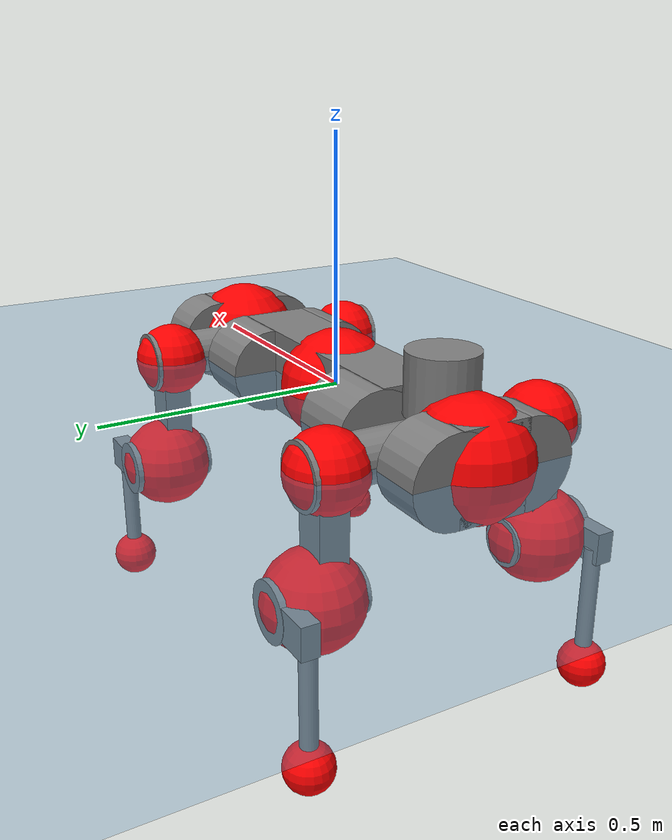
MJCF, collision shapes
<mujoco model="anymal_c">
  <compiler angle="radian" assetdir="assets" balanceinertia="true" inertiafromgeom="false"/>

  <option timestep="0.005" density="1.2" viscosity="2e-05"/>

  <size nkey="1"/>

  <visual>
    <quality shadowsize="8192"/>
    <map shadowclip="0.5"/>
  </visual>

  <default>
    <default class="/">
      <material specular="0" shininess="0.25"/>
      <geom contype="0" conaffinity="0" group="1" solref="-1000 -80"/>
      <site size="0.01 0.005 0.005" group="5"/>
      <general forcelimited="true" forcerange="-80 80" biastype="affine" gainprm="80" biasprm="0 -80 -2"/>
      <default class="anymal_c">
        <joint armature="0.01" damping="0.01" frictionloss="0.1"/>
        <default class="visual">
          <geom type="mesh" group="2"/>
          <default class="visual_zflip"/>
        </default>
        <default class="collision">
          <geom type="cylinder" group="3"/>
          <default class="foot">
            <geom size="0.03 0 0" type="sphere" condim="6" priority="1" friction="0.8 0.02 0.01" solimp="0.015 1 0.03"/>
          </default>
        </default>
      </default>
      <default class="reward_collision_sphere">
        <geom group="5" rgba="1 0 0 1"/>
      </default>
    </default>
  </default>

  <asset>
    <texture type="skybox" colorspace="auto" name="//unnamed_texture_0" builtin="gradient" rgb1="0.95 0.95 0.95" rgb2="0.95 0.95 0.95" width="100" height="600"/>
    <texture type="2d" colorspace="auto" name="texplane" builtin="checker" rgb1="0.345 0.575 0.748" rgb2="0.345 0.575 0.748" markrgb="1 1 1" width="512" height="512"/>
    <texture type="2d" colorspace="linear" name="base" file="base.png"/>
    <texture type="2d" colorspace="linear" name="top_shell" file="top_shell.png"/>
    <texture type="2d" colorspace="linear" name="bottom_shell" file="bottom_shell.png"/>
    <texture type="2d" colorspace="linear" name="remote" file="remote.png"/>
    <texture type="2d" colorspace="linear" name="hatch" file="hatch.png"/>
    <texture type="2d" colorspace="linear" name="handle" file="handle.png"/>
    <texture type="2d" colorspace="linear" name="face" file="face.png"/>
    <texture type="2d" colorspace="linear" name="battery" file="battery.png"/>
    <texture type="2d" colorspace="linear" name="lidar_cage" file="lidar_cage.png"/>
    <texture type="2d" colorspace="linear" name="depth_camera" file="depth_camera.png"/>
    <texture type="2d" colorspace="linear" name="wide_angle_camera" file="wide_angle_camera.png"/>
    <texture type="2d" colorspace="linear" name="lidar" file="lidar.png"/>
    <texture type="2d" colorspace="linear" name="drive" file="drive.png"/>
    <texture type="2d" colorspace="linear" name="hip_l" file="hip_l.png"/>
    <texture type="2d" colorspace="linear" name="shank_l" file="shank_l.png"/>
    <texture type="2d" colorspace="linear" name="foot" file="foot.png"/>
    <texture type="2d" colorspace="linear" name="thigh" file="thigh.png"/>
    <texture type="2d" colorspace="linear" name="shank_r" file="shank_r.png"/>
    <texture type="2d" colorspace="linear" name="hip_r" file="hip_r.png"/>
    <material name="MatPlane" class="/" texture="texplane" texuniform="true" texrepeat="2 2" specular="0.9" shininess="0.5"/>
    <material name="black_plastic" class="/" rgba="0.007 0.007 0.007 1"/>
    <material name="green" class="/" rgba="0.052 0.178 0.033 1"/>
    <material name="red" class="/" rgba="0.178 0.006 0.005 1"/>
    <material name="yellow" class="/" rgba="0.178 0.119 0.006 1"/>
    <material name="lwl" class="/" rgba="0.8 0.8 0.8 1"/>
    <material name="base" class="/" texture="base"/>
    <material name="top_shell" class="/" texture="top_shell"/>
    <material name="bottom_shell" class="/" texture="bottom_shell"/>
    <material name="hip_l" class="/" texture="hip_l"/>
    <material name="thigh" class="/" texture="thigh"/>
    <material name="shank_l" class="/" texture="shank_l"/>
    <material name="foot" class="/" texture="foot"/>
    <material name="hip_r" class="/" texture="hip_r"/>
    <material name="shank" class="/" texture="shank_r"/>
    <material name="hatch" class="/" texture="hatch"/>
    <material name="remote" class="/" texture="remote"/>
    <material name="handle" class="/" texture="handle"/>
    <material name="face" class="/" texture="face"/>
    <material name="depth_camera" class="/" texture="depth_camera"/>
    <material name="wide_angle_camera" class="/" texture="wide_angle_camera"/>
    <material name="battery" class="/" texture="battery"/>
    <material name="lidar_cage" class="/" texture="lidar_cage"/>
    <material name="lidar" class="/" texture="lidar"/>
    <material name="drive" class="/" texture="drive"/>
    <mesh name="base_0" class="/" file="base_0.obj"/>
    <mesh name="base_1" class="/" file="base_1.obj"/>
    <mesh name="base_2" class="/" file="base_2.obj"/>
    <mesh name="base_3" class="/" file="base_3.obj"/>
    <mesh name="base_4" class="/" file="base_4.obj"/>
    <mesh name="base_5" class="/" file="base_5.obj"/>
    <mesh name="top_shell" class="/" file="top_shell.obj"/>
    <mesh name="bottom_shell" class="/" file="bottom_shell.obj"/>
    <mesh name="remote" class="/" file="remote.obj"/>
    <mesh name="handle" class="/" file="handle.obj"/>
    <mesh name="face" class="/" file="face.obj"/>
    <mesh name="wide_angle_camera" class="/" file="wide_angle_camera.obj"/>
    <mesh name="depth_camera" class="/" file="depth_camera.obj"/>
    <mesh name="battery" class="/" file="battery.obj"/>
    <mesh name="lidar_cage" class="/" file="lidar_cage.obj"/>
    <mesh name="lidar" class="/" file="lidar.obj"/>
    <mesh name="drive" class="/" file="drive.obj"/>
    <mesh name="hip_l" class="/" file="hip_l.obj"/>
    <mesh name="thigh" class="/" file="thigh.obj"/>
    <mesh name="shank_l" class="/" file="shank_l.obj"/>
    <mesh name="foot" class="/" file="foot.obj"/>
    <mesh name="hip_r" class="/" file="hip_r.obj"/>
    <mesh name="hatch" class="/" file="hatch.obj"/>
    <mesh name="shank_r" class="/" file="shank_r.obj"/>
  </asset>

  <worldbody>
    <geom name="floor" class="/" size="100 100 0.125" type="plane" group="0" material="MatPlane"/>
    <light name="toplight_shadow" class="/" pos="0 0 5" dir="0.0990148 0.0990148 -0.990148" type="directional" ambient="0.04 0.04 0.04" diffuse="0.55 0.55 0.55" specular="0.12 0.12 0.12"/>
    <light name="toplight_fill" class="/" pos="0 0 5" dir="0.0990148 0.0990148 -0.990148" type="directional" castshadow="false" ambient="0.04 0.04 0.04" diffuse="0.3 0.3 0.3" specular="0.08 0.08 0.08"/>
    <body name="trunk" childclass="anymal_c" pos="-0.00165419 -0.00283819 -0.00165935" quat="0.999999 0.00121094 0.000106485 -0.000504418">
      <inertial pos="0.00121188 0.00116681 0.0423399" quat="0.503791 0.498918 0.50339 0.493836" mass="17.8844" diaginertia="0.616578 0.923144 0.0955089"/>
      <joint name="//unnamed_joint_0" type="free" armature="0" damping="0" frictionloss="0"/>
      <geom name="//unnamed_geom_1" class="visual" material="green" mesh="base_0"/>
      <geom name="//unnamed_geom_2" class="visual" material="yellow" mesh="base_1"/>
      <geom name="//unnamed_geom_3" class="visual" material="red" mesh="base_2"/>
      <geom name="//unnamed_geom_4" class="visual" material="black_plastic" mesh="base_3"/>
      <geom name="//unnamed_geom_5" class="visual" material="lwl" mesh="base_4"/>
      <geom name="//unnamed_geom_6" class="visual" material="base" mesh="base_5"/>
      <geom name="trunk_1" class="collision" size="0.28211 0.0680955 0.0875514" type="box"/>
      <geom name="trunk_2" class="collision" size="0.0875514 0.0705275" pos="0.21597 0.0758056 0" quat="0.707107 0 0.707107 0"/>
      <geom name="trunk_3" class="collision" size="0.0875514 0.0705275" pos="-0.21597 0.0758056 0" quat="0.707107 0 0.707107 0"/>
      <geom name="trunk_4" class="collision" size="0.0875514 0.0705275" pos="0.21597 -0.0758056 0" quat="0.707107 0 0.707107 0"/>
      <geom name="trunk_5" class="collision" size="0.0875514 0.0705275" pos="-0.21597 -0.0758056 0" quat="0.707107 0 0.707107 0"/>
      <geom name="//unnamed_geom_12" class="visual" material="top_shell" mesh="top_shell"/>
      <geom name="//unnamed_geom_13" class="visual" material="bottom_shell" mesh="bottom_shell"/>
      <geom name="//unnamed_geom_14" class="visual" material="remote" mesh="remote"/>
      <geom name="//unnamed_geom_15" class="visual" material="handle" mesh="handle"/>
      <geom name="//unnamed_geom_16" class="visual" pos="0.411584 0 0" quat="1 0 0 0" material="face" mesh="face"/>
      <geom name="trunk_6" class="collision" size="0.0535036 0.0680955 0.0875514" pos="0.466197 0 0" type="box"/>
      <geom name="//unnamed_geom_18" class="collision" size="0.0875514 0.0535036" pos="0.466197 0.0758056 0" quat="0.707107 0 0.707107 0"/>
      <geom name="//unnamed_geom_19" class="collision" size="0.0875514 0.0535036" pos="0.466197 -0.0758056 0" quat="0.707107 0 0.707107 0"/>
      <geom name="//unnamed_geom_20" class="visual" pos="0.458396 0 -0.0234567" quat="0.965926 0 0.258819 0" material="depth_camera" mesh="depth_camera"/>
      <geom name="//unnamed_geom_21" class="visual" pos="0.509391 0 0.0126119" material="wide_angle_camera" mesh="wide_angle_camera"/>
      <geom name="//unnamed_geom_22" class="visual_zflip" pos="-0.411584 0 0" quat="0 0 0 1" material="face" mesh="face"/>
      <geom name="trunk_7" class="collision" size="0.0535036 0.0680955 0.0875514" pos="-0.466197 0 0" quat="0 0 0 1" type="box"/>
      <geom name="//unnamed_geom_24" class="collision" size="0.0875514 0.0535036" pos="-0.466197 -0.0758056 0" quat="0 -0.707107 0 0.707107"/>
      <geom name="//unnamed_geom_25" class="collision" size="0.0875514 0.0535036" pos="-0.466197 0.0758056 0" quat="0 -0.707107 0 0.707107"/>
      <geom name="//unnamed_geom_26" class="visual" pos="-0.458396 0 -0.0234567" quat="0 -0.258819 0 0.965926" material="depth_camera" mesh="depth_camera"/>
      <geom name="//unnamed_geom_27" class="visual_zflip" pos="-0.509391 0 0.0126119" quat="0 0 0 1" material="wide_angle_camera" mesh="wide_angle_camera"/>
      <geom name="//unnamed_geom_28" class="visual" material="battery" mesh="battery"/>
      <geom name="//unnamed_geom_29" class="visual" pos="0 0.0839758 0.0256177" quat="0.683013 -0.183013 0.183013 0.683013" material="depth_camera" mesh="depth_camera"/>
      <geom name="//unnamed_geom_30" class="visual" pos="0 -0.0839758 0.0256177" quat="0.683013 0.183013 0.183013 -0.683013" material="depth_camera" mesh="depth_camera"/>
      <geom name="//unnamed_geom_31" class="visual" pos="-0.361439 0 0.0619222" quat="1 0 0 0" material="lidar_cage" mesh="lidar_cage"/>
      <geom name="trunk_8" class="collision" size="0.0680955 0.0583676" pos="-0.361439 0 0.112471"/>
      <geom name="//unnamed_geom_33" class="visual" pos="-0.361439 3.53482e-05 0.1198" quat="0.707107 0 0 -0.707107" material="lidar" mesh="lidar"/>
      <geom name="//unnamed_geom_34" class="visual" pos="0.29779 0.11254 4.14795e-09" quat="0.258819 0.965926 0 0" material="drive" mesh="drive"/>
      <geom name="//unnamed_geom_35" class="visual" pos="0.29779 -0.11254 -4.14795e-09" quat="0.258819 -0.965926 0 0" material="drive" mesh="drive"/>
      <geom name="//unnamed_geom_36" class="visual" pos="-0.29779 0.11254 -4.14795e-09" quat="0 0 0.965926 -0.258819" material="drive" mesh="drive"/>
      <geom name="//unnamed_geom_37" class="visual" pos="-0.29779 -0.11254 4.14795e-09" quat="0 0 -0.965926 -0.258819" material="drive" mesh="drive"/>
      <geom name="//unnamed_geom_38" class="visual" pos="0.115184 0 0.0615009" quat="1 0 0 0" material="hatch" mesh="hatch"/>
      <geom name="//unnamed_geom_39" class="reward_collision_sphere" size="0.116735"/>
      <geom name="//unnamed_geom_40" class="reward_collision_sphere" size="0.116735" pos="0.446834 0 0"/>
      <geom name="//unnamed_geom_41" class="reward_collision_sphere" size="0.116735" pos="-0.446834 0 0"/>
      <site name="imu" pos="0.24615 0.0161408 0.0364892" size="0.00972793"/>
      <camera name="track" pos="0 -2.16588 0" quat="0.707107 0.707107 0 0" mode="trackcom"/>
      <camera name="ego_camera" pos="0.446834 0 -0.0336991" quat="-0.5 -0.5 0.5 0.5"/>
      <body name="LF_HIP" pos="0.295932 0.110441 0.00232696" quat="0.259142 0.965839 -1.16371e-06 -0.000596729">
        <inertial pos="0.0550978 -0.0186793 -0.00932281" quat="-0.13104 0.71076 -0.135918 0.677624" mass="2.66634" diaginertia="0.00587377 0.00735723 0.00148384"/>
        <joint name="LF_HAA" pos="0 0 0" axis="1 -0.000539159 0.000218065" range="-0.701862 0.442359" armature="0.0110759" damping="0" frictionloss="0.106435"/>
        <geom name="//unnamed_geom_42" class="visual" pos="0 0.000244005 -4.00776e-05" quat="0.258819 -0.965926 0 0" material="hip_l" mesh="hip_l"/>
        <geom name="//unnamed_geom_43" class="visual" pos="0.0594785 -0.0731701 -0.0404662" quat="0.183013 -0.683013 0.683013 0.183013" material="drive" mesh="drive"/>
        <geom name="//unnamed_geom_44" class="collision" size="0.0486397 0.0680955" pos="0.0594786 -0.0129517 -0.00581731" quat="-0.353553 -0.612372 0.612372 -0.353553"/>
        <body name="LF_THIGH" pos="0.0592969 -0.0798644 -0.0341555" quat="0.182828 -0.682738 0.683318 0.183084">
          <inertial pos="0.0323476 -0.000394615 -0.204726" quat="0.993669 -0.00376887 -0.0771683 0.0815587" mass="2.83508" diaginertia="0.0297674 0.045051 0.00175152"/>
          <joint name="LF_HFE" pos="0 0 0" axis="0.999936 -0.00537211 0.00991053" stiffness="0.0028077" range="-3.19481 3.19373" armature="0.0111228" damping="0" frictionloss="0.108796"/>
          <geom name="//unnamed_geom_45" class="visual" pos="-0.00179012 -2.82081e-06 0" quat="0.707107 0 0 -0.707107" material="thigh" mesh="thigh"/>
          <geom name="//unnamed_geom_46" class="collision" size="0.0632316 0.0389117" pos="0.0397186 0 0" quat="0.5 0.5 -0.5 -0.5"/>
          <geom name="//unnamed_geom_47" class="collision" size="0.0364798 0.0291838 0.137469" pos="0.0297889 0 -0.119054" quat="0.707107 0 0 -0.707107" type="box"/>
          <geom name="//unnamed_geom_48" class="visual" pos="0.0995943 0 -0.240106" quat="1 0 0 0" material="drive" mesh="drive"/>
          <geom name="//unnamed_geom_49" class="collision" size="0.0486397 0.0680955" pos="0.0300868 0 -0.240106" quat="0.707107 0 0.707107 0"/>
          <geom name="//unnamed_geom_50" class="reward_collision_sphere" size="0.0778235" pos="0.0248241 0 0"/>
          <body name="LF_SHANK" pos="0.100672 -0.000925257 -0.240689" quat="0.999999 0.000136834 0.00135049 8.33448e-05">
            <inertial pos="0.00811485 -0.0638071 -0.0707847" quat="0.991818 -0.123411 0.00402446 -0.032403" mass="0.546376" diaginertia="0.00969178 0.0141909 0.00045873"/>
            <joint name="LF_KFE" pos="0 0 0" axis="0.999997 -0.00154636 0.00190014" range="-3.11975 3.08952" armature="0.00836231" damping="0.0104483" frictionloss="0.101718"/>
            <geom name="//unnamed_geom_51" class="visual" pos="-0.00058372 -0.00311242 0" quat="0.707107 0 0 -0.707107" material="shank_l" mesh="shank_l"/>
            <geom name="LF_kfe_act" class="collision" size="0.0583676 0.0194559" pos="0.0198593 0 0" quat="0.5 0.5 -0.5 -0.5"/>
            <geom name="//unnamed_geom_53" class="collision" size="0.0559347 0.0328318 0.0184831" pos="0.0198593 -0.0622678 0" quat="0.5 0.5 -0.5 -0.5" type="box"/>
            <geom name="//unnamed_geom_54" class="visual" pos="0.0129583 -0.0962474 -0.284732" quat="0.382683 0 0 -0.92388" material="foot" mesh="foot"/>
            <geom name="LF_calf" class="collision" size="0.0170239 0.137409" pos="0.0129582 -0.0952444 -0.142366" quat="0.707107 0 0 -0.707107"/>
            <geom name="LF_foot" class="foot" size="0.0338144" pos="0.0129582 -0.0952444 -0.265777" quat="0.707107 0 0 -0.707107"/>
            <geom name="//unnamed_geom_57" class="reward_collision_sphere" size="0.0972793" pos="-0.0496482 0 0"/>
            <geom name="//unnamed_geom_58" class="reward_collision_sphere" size="0.0486397" pos="0.0129582 -0.0952444 -0.265777"/>
            <site name="LF_foot" class="foot" pos="0.0129582 -0.0952444 -0.265777" quat="0.707107 0 0 -0.707107" size="0.00972793"/>
          </body>
        </body>
      </body>
      <body name="RF_HIP" pos="0.297856 -0.110778 0.000219801" quat="0.259625 -0.965709 -0.000259593 -0.000187438">
        <inertial pos="0.0590395 0.0178223 -0.00698614" quat="0.13734 0.677247 0.128101 0.711382" mass="2.66737" diaginertia="0.00591488 0.00760263 0.00139546"/>
        <joint name="RF_HAA" pos="0 0 0" axis="0.999995 -0.000501768 -0.00295857" range="-0.440419 0.724156" armature="0.00909804" damping="0.0107908" frictionloss="0.104846"/>
        <geom name="//unnamed_geom_59" class="visual" pos="0 -0.000244003 -4.00775e-05" quat="0.258819 0.965926 0 0" material="hip_r" mesh="hip_r"/>
        <geom name="//unnamed_geom_60" class="visual" pos="0.0594786 0.0731701 -0.0404662" quat="0.183013 0.683013 0.683013 -0.183013" material="drive" mesh="drive"/>
        <geom name="//unnamed_geom_61" class="collision" size="0.0486397 0.0680955" pos="0.0594786 0.0129517 -0.00581731" quat="-0.353553 0.612372 0.612372 0.353553"/>
        <body name="RF_THIGH" pos="0.0585571 0.0780902 -0.0333049" quat="0.183048 0.683551 0.68264 -0.182358">
          <inertial pos="0.0278514 -0.00139719 -0.207244" quat="0.992406 -0.00253247 -0.0811446 0.0924126" mass="2.73869" diaginertia="0.0288697 0.0426386 0.00168651"/>
          <joint name="RF_HFE" pos="0 0 0" axis="0.999986 -0.00454162 0.00288759" stiffness="0.00565225" range="-3.15983 3.11096" armature="0.00961652" damping="0.0130422" frictionloss="0.106672"/>
          <geom name="//unnamed_geom_62" class="visual" pos="-0.00179012 -2.82081e-06 0" quat="0.707107 0 0 -0.707107" material="thigh" mesh="thigh"/>
          <geom name="//unnamed_geom_63" class="collision" size="0.0632316 0.0389117" pos="0.0397186 0 0" quat="0.5 0.5 0.5 0.5"/>
          <geom name="//unnamed_geom_64" class="collision" size="0.0364798 0.0291838 0.137469" pos="0.0297889 0 -0.119054" quat="0.707107 0 0 0.707107" type="box"/>
          <geom name="//unnamed_geom_65" class="visual" pos="0.0995943 0 -0.240106" quat="1 0 0 0" material="drive" mesh="drive"/>
          <geom name="//unnamed_geom_66" class="collision" size="0.0486397 0.0680955" pos="0.0300868 0 -0.240106" quat="0.707107 0 0.707107 0"/>
          <geom name="//unnamed_geom_67" class="reward_collision_sphere" size="0.0778235" pos="0.0248241 0 0"/>
          <body name="RF_SHANK" pos="0.102354 -0.000144654 -0.239958" quat="1 0.00022531 3.08156e-05 -0.000172196">
            <inertial pos="0.00819955 0.0665933 -0.0682761" quat="0.992697 0.116884 -0.00162913 0.0298054" mass="0.562152" diaginertia="0.0104384 0.0137025 0.000486763"/>
            <joint name="RF_KFE" pos="0 0 0" axis="0.999926 -0.0066705 0.0102199" range="-3.13092 3.15689" armature="0.00931062" damping="0.0216865" frictionloss="0.0985285"/>
            <geom name="//unnamed_geom_68" class="visual" pos="-0.000583717 0.00311242 0" quat="0.707107 0 0 0.707107" material="shank" mesh="shank_r"/>
            <geom name="RF_kfe_act" class="collision" size="0.0583676 0.0194559" pos="0.0198593 0 0" quat="0.5 0.5 0.5 0.5"/>
            <geom name="//unnamed_geom_70" class="collision" size="0.0559347 0.0328318 0.0184831" pos="0.0198593 0.0622678 0" quat="0.5 0.5 0.5 0.5" type="box"/>
            <geom name="//unnamed_geom_71" class="visual" pos="0.012958 0.0962474 -0.284732" quat="0.382683 0 0 0.92388" material="foot" mesh="foot"/>
            <geom name="RF_calf" class="collision" size="0.0170239 0.137409" pos="0.0129582 0.0952444 -0.142366" quat="0.707107 0 0 0.707107"/>
            <geom name="RF_foot" class="foot" size="0.0274058" pos="0.0129582 0.0952444 -0.265777" quat="0.707107 0 0 0.707107"/>
            <geom name="//unnamed_geom_74" class="reward_collision_sphere" size="0.0972793" pos="-0.0496482 0 0"/>
            <geom name="//unnamed_geom_75" class="reward_collision_sphere" size="0.0486397" pos="0.0129582 0.0952444 -0.265777"/>
            <site name="RF_foot" class="foot" pos="0.0129582 0.0952444 -0.265777" quat="0.707107 0 0 0.707107" size="0.00972793"/>
          </body>
        </body>
      </body>
      <body name="LH_HIP" pos="-0.296526 0.11271 0.00287071" quat="-0.000189539 -0.000219464 0.965904 -0.2589">
        <inertial pos="0.0579924 0.0164265 -0.0080995" quat="0.135174 0.679036 0.12805 0.7101" mass="2.53642" diaginertia="0.00561233 0.00752263 0.00137918"/>
        <joint name="LH_HAA" pos="0 0 0" axis="0.999993 -0.00160834 0.00326435" stiffness="0.00777517" range="-0.485532 0.704053" armature="0.00980348" damping="0.0081198" frictionloss="0.10511"/>
        <geom name="//unnamed_geom_76" class="visual" pos="0 -0.000244003 -4.00775e-05" quat="-0.258819 -0.965926 0 0" material="hip_r" mesh="hip_r"/>
        <geom name="//unnamed_geom_77" class="visual" pos="0.0594786 0.0731701 -0.0404662" quat="0.183013 0.683013 0.683013 -0.183013" material="drive" mesh="drive"/>
        <geom name="//unnamed_geom_78" class="collision" size="0.0486397 0.0680955" pos="0.0594786 0.0129517 -0.00581731" quat="-0.353553 0.612372 0.612372 0.353553"/>
        <body name="LH_THIGH" pos="0.0571513 0.0809051 -0.0326715" quat="0.183241 0.68357 0.682461 -0.182762">
          <inertial pos="0.0304723 0.000453099 -0.206177" quat="0.991599 -0.0108186 -0.0902207 0.0920559" mass="2.74179" diaginertia="0.0294761 0.0430779 0.00180384"/>
          <joint name="LH_HFE" pos="0 0 0" axis="0.999965 -0.0048843 0.0067246" stiffness="0.00104096" range="-3.1258 3.13239" armature="0.0084843" damping="0" frictionloss="0.0909709"/>
          <geom name="//unnamed_geom_79" class="visual" pos="-0.00179012 -2.82081e-06 0" quat="0.707107 0 0 -0.707107" material="thigh" mesh="thigh"/>
          <geom name="//unnamed_geom_80" class="collision" size="0.0632316 0.0389117" pos="0.0397186 0 0" quat="0.5 0.5 -0.5 -0.5"/>
          <geom name="//unnamed_geom_81" class="collision" size="0.0364798 0.0291838 0.137469" pos="0.0297889 0 -0.119054" quat="0.707107 0 0 -0.707107" type="box"/>
          <geom name="//unnamed_geom_82" class="visual" pos="0.0995943 0 -0.240106" quat="1 0 0 0" material="drive" mesh="drive"/>
          <geom name="//unnamed_geom_83" class="collision" size="0.0486397 0.0680955" pos="0.0300868 0 -0.240106" quat="0.707107 0 0.707107 0"/>
          <geom name="//unnamed_geom_84" class="reward_collision_sphere" size="0.0778235" pos="0.0248241 0 0"/>
          <body name="LH_SHANK" pos="0.100852 -0.00128584 -0.238539" quat="1 -3.59096e-05 -9.67372e-05 -5.78321e-05">
            <inertial pos="0.00550353 0.0662972 -0.0652344" quat="0.99294 0.11577 -0.00176223 0.0257872" mass="0.544017" diaginertia="0.00982022 0.0137822 0.000482837"/>
            <joint name="LH_KFE" pos="0 0 0" axis="0.999998 0.000172024 -0.00178462" stiffness="0.00231604" range="-3.15379 3.14197" armature="0.00886307" damping="0" frictionloss="0.0978144"/>
            <geom name="//unnamed_geom_85" class="visual" pos="-0.000583717 0.00311242 0" quat="-0.707107 0 0 -0.707107" material="shank" mesh="shank_r"/>
            <geom name="LH_kfe_act" class="collision" size="0.0583676 0.0194559" pos="0.0198593 0 0" quat="0.5 0.5 -0.5 -0.5"/>
            <geom name="//unnamed_geom_87" class="collision" size="0.0559347 0.0328318 0.0184831" pos="0.0198593 0.0622678 0" quat="0.5 0.5 -0.5 -0.5" type="box"/>
            <geom name="//unnamed_geom_88" class="visual" pos="0.012958 0.0962474 -0.284732" quat="-0.382683 0 0 -0.92388" material="foot" mesh="foot"/>
            <geom name="LH_calf" class="collision" size="0.0170239 0.137409" pos="0.0129582 0.0952444 -0.142366" quat="0.707107 0 0 -0.707107"/>
            <geom name="LH_foot" class="foot" size="0.0330225" pos="0.0129582 0.0952444 -0.265777" quat="0.707107 0 0 -0.707107"/>
            <geom name="//unnamed_geom_91" class="reward_collision_sphere" size="0.0972793" pos="-0.0496482 0 0"/>
            <geom name="//unnamed_geom_92" class="reward_collision_sphere" size="0.0486397" pos="0.0129582 0.0952444 -0.265777"/>
            <site name="LH_foot" class="foot" pos="0.0129582 0.0952444 -0.265777" quat="0.707107 0 0 -0.707107" size="0.00972793"/>
          </body>
        </body>
      </body>
      <body name="RH_HIP" pos="-0.296587 -0.114006 0.00272038" quat="0.000279825 0.00136108 -0.965736 -0.259523">
        <inertial pos="0.0561287 -0.0139586 -0.00715853" quat="-0.13003 0.706997 -0.145258 0.679815" mass="2.55951" diaginertia="0.00583493 0.00757056 0.00136439"/>
        <joint name="RH_HAA" pos="0 0 0" axis="0.999991 -0.00287105 -0.00323998" stiffness="0.00538316" range="-0.738132 0.502245" armature="0.0106692" damping="0.0134794" frictionloss="0.0857652"/>
        <geom name="//unnamed_geom_93" class="visual" pos="0 0.000244005 -4.00776e-05" quat="-0.258819 0.965926 0 0" material="hip_l" mesh="hip_l"/>
        <geom name="//unnamed_geom_94" class="visual" pos="0.0594785 -0.0731701 -0.0404662" quat="-0.183013 0.683013 -0.683013 -0.183013" material="drive" mesh="drive"/>
        <geom name="//unnamed_geom_95" class="collision" size="0.0486397 0.0680955" pos="0.0594786 -0.0129517 -0.00581731" quat="0.353553 0.612372 -0.612372 0.353553"/>
        <body name="RH_THIGH" pos="0.0579213 -0.0781356 -0.0376527" quat="-0.182631 0.682384 -0.683705 -0.183154">
          <inertial pos="0.031173 -0.00250713 -0.207638" quat="0.993304 -0.00393997 -0.0786399 0.0845418" mass="2.69388" diaginertia="0.0279832 0.0433965 0.00169625"/>
          <joint name="RH_HFE" pos="0 0 0" axis="0.999996 -0.000611628 0.00291895" range="-3.18246 3.19918" armature="0.0109417" damping="0.00944894" frictionloss="0.0953614"/>
          <geom name="//unnamed_geom_96" class="visual" pos="-0.00179012 -2.82081e-06 0" quat="0.707107 0 0 -0.707107" material="thigh" mesh="thigh"/>
          <geom name="//unnamed_geom_97" class="collision" size="0.0632316 0.0389117" pos="0.0397186 0 0" quat="0.5 0.5 0.5 0.5"/>
          <geom name="//unnamed_geom_98" class="collision" size="0.0364798 0.0291838 0.137469" pos="0.0297889 0 -0.119054" quat="0.707107 0 0 0.707107" type="box"/>
          <geom name="//unnamed_geom_99" class="visual" pos="0.0995943 0 -0.240106" quat="1 0 0 0" material="drive" mesh="drive"/>
          <geom name="//unnamed_geom_100" class="collision" size="0.0486397 0.0680955" pos="0.0300868 0 -0.240106" quat="0.707107 0 0.707107 0"/>
          <geom name="//unnamed_geom_101" class="reward_collision_sphere" size="0.0778235" pos="0.0248241 0 0"/>
          <body name="RH_SHANK" pos="0.098619 0.00327352 -0.240855" quat="1 -5.9698e-05 -3.53083e-05 0.000146215">
            <inertial pos="0.0064199 -0.066009 -0.0654424" quat="0.992214 -0.122649 0.0016938 -0.0215604" mass="0.539588" diaginertia="0.00994249 0.0130304 0.000482817"/>
            <joint name="RH_KFE" pos="0 0 0" axis="0.999995 -0.00246868 0.0021501" stiffness="0.000189976" range="-3.07363 3.15399" armature="0.00826226" damping="0.00401899" frictionloss="0.0999355"/>
            <geom name="//unnamed_geom_102" class="visual" pos="-0.00058372 -0.00311242 0" quat="0.707107 0 0 -0.707107" material="shank_l" mesh="shank_l"/>
            <geom name="RH_kfe_act" class="collision" size="0.0583676 0.0194559" pos="0.0198593 0 0" quat="0.5 0.5 0.5 0.5"/>
            <geom name="//unnamed_geom_104" class="collision" size="0.0559347 0.0328318 0.0184831" pos="0.0198593 -0.0622678 0" quat="0.5 0.5 0.5 0.5" type="box"/>
            <geom name="//unnamed_geom_105" class="visual" pos="0.0129583 -0.0962474 -0.284732" quat="0.382683 0 0 -0.92388" material="foot" mesh="foot"/>
            <geom name="RH_calf" class="collision" size="0.0170239 0.137409" pos="0.0129582 -0.0952444 -0.142366" quat="0.707107 0 0 0.707107"/>
            <geom name="RH_foot" class="foot" size="0.0262342" pos="0.0129582 -0.0952444 -0.265777" quat="0.707107 0 0 0.707107"/>
            <geom name="//unnamed_geom_108" class="reward_collision_sphere" size="0.0972793" pos="-0.0496482 0 0"/>
            <geom name="//unnamed_geom_109" class="reward_collision_sphere" size="0.0486397" pos="0.0129582 -0.0952444 -0.265777"/>
            <site name="RH_foot" class="foot" pos="0.0129582 -0.0952444 -0.265777" quat="0.707107 0 0 0.707107" size="0.00972793"/>
          </body>
        </body>
      </body>
    </body>
  </worldbody>

  <contact>
    <pair class="/" geom1="floor" geom2="LF_foot" name="//unnamed_contact_0"/>
    <pair class="/" geom1="floor" geom2="RF_foot" name="//unnamed_contact_1"/>
    <pair class="/" geom1="floor" geom2="LH_foot" name="//unnamed_contact_2"/>
    <pair class="/" geom1="floor" geom2="RH_foot" name="//unnamed_contact_3"/>
  </contact>

  <actuator>
    <general name="LF_HAA" class="/" joint="LF_HAA" forcerange="-78.4009 78.4009" gainprm="78.644" biasprm="0 -78.644 -1.95961"/>
    <general name="LF_HFE" class="/" joint="LF_HFE" forcerange="-70.986 70.986" gainprm="78.644" biasprm="0 -78.644 -1.95961"/>
    <general name="LF_KFE" class="/" joint="LF_KFE" forcerange="-77.3055 77.3055" gainprm="78.644" biasprm="0 -78.644 -1.95961"/>
    <general name="RF_HAA" class="/" joint="RF_HAA" forcerange="-81.2396 81.2396" gainprm="78.644" biasprm="0 -78.644 -1.95961"/>
    <general name="RF_HFE" class="/" joint="RF_HFE" forcerange="-80.7101 80.7101" gainprm="78.644" biasprm="0 -78.644 -1.95961"/>
    <general name="RF_KFE" class="/" joint="RF_KFE" forcerange="-69.7629 69.7629" gainprm="78.644" biasprm="0 -78.644 -1.95961"/>
    <general name="LH_HAA" class="/" joint="LH_HAA" forcerange="-80.6684 80.6684" gainprm="78.644" biasprm="0 -78.644 -1.95961"/>
    <general name="LH_HFE" class="/" joint="LH_HFE" forcerange="-80.7171 80.7171" gainprm="78.644" biasprm="0 -78.644 -1.95961"/>
    <general name="LH_KFE" class="/" joint="LH_KFE" forcerange="-75.1832 75.1832" gainprm="78.644" biasprm="0 -78.644 -1.95961"/>
    <general name="RH_HAA" class="/" joint="RH_HAA" forcerange="-75.4567 75.4567" gainprm="78.644" biasprm="0 -78.644 -1.95961"/>
    <general name="RH_HFE" class="/" joint="RH_HFE" forcerange="-75.9438 75.9438" gainprm="78.644" biasprm="0 -78.644 -1.95961"/>
    <general name="RH_KFE" class="/" joint="RH_KFE" forcerange="-84.0094 84.0094" gainprm="78.644" biasprm="0 -78.644 -1.95961"/>
  </actuator>

  <sensor>
    <gyro site="imu" name="imu_angular_velocity"/>
    <velocimeter site="imu" name="imu_linear_velocity"/>
    <framelinvel objtype="site" objname="LF_foot" name="LF_foot_global_linear_velocity"/>
    <framelinvel objtype="site" objname="RF_foot" name="RF_foot_global_linear_velocity"/>
    <framelinvel objtype="site" objname="LH_foot" name="LH_foot_global_linear_velocity"/>
    <framelinvel objtype="site" objname="RH_foot" name="RH_foot_global_linear_velocity"/>
  </sensor>

  <keyframe>
    <key name="home" qpos="0 0 0.55 1 0 0 0 0 0.4 -0.8 0 -0.4 0.8 0 -0.4 0.8 0 0.4 -0.8"/>
  </keyframe>
</mujoco>
